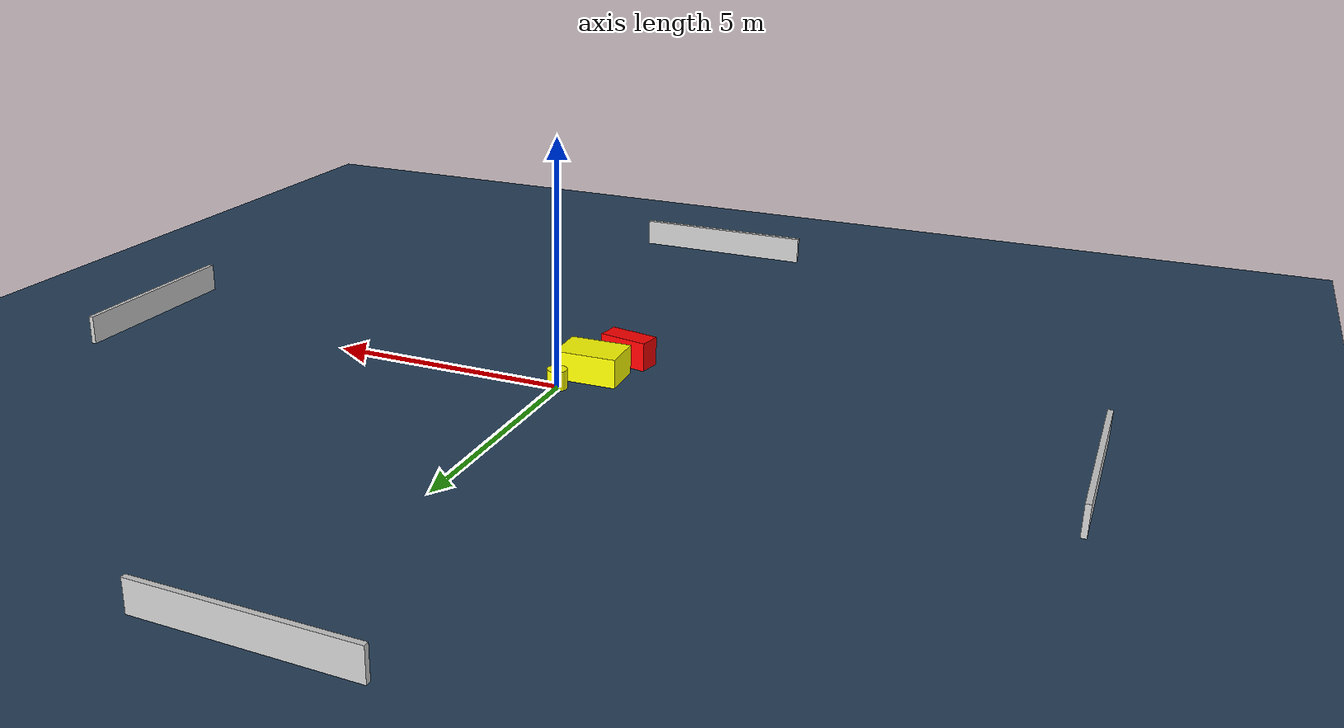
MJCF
<?xml version="1.0" ?>
<mujoco model="generated_environment">
  <option timestep="0.01" integrator="RK4" cone="elliptic"/>
  <default>
    <geom density="1"/>
  </default>
  <asset>
    <texture builtin="gradient" height="3072" name="skybox" rgb1="0.3 0.5 0.7" rgb2="0 0 0" type="skybox" width="512"/>
    <texture builtin="checker" height="300" name="groundplane" rgb1="0.2 0.3 0.4" rgb2="0.1 0.2 0.3" type="2d" width="300"/>
    <material name="groundplane" reflectance="0.2" texrepeat="5 5" texture="groundplane"/>
  </asset>
  <worldbody>
    <light dir="0 0 -1" directional="true" pos="0 0 1.5"/>
    <geom condim="3" friction="0.5 0.005 0.001" material="groundplane" name="floor" pos="0 0 0" size="0 0 0.05" type="plane"/>
    <body name="walls">
      <geom name="wall_1" condim="4" pos="-10.0 0.0 0.3" rgba="0.800000011920929 0.800000011920929 0.800000011920929 1.0" size="0.05 2.0 0.3" type="box"/>
      <geom name="wall_2" condim="4" pos="10.0 0.0 0.3" rgba="0.800000011920929 0.800000011920929 0.800000011920929 1.0" size="0.05 2.0 0.3" type="box"/>
      <geom name="wall_3" condim="4" pos="0.0 -10.0 0.3" rgba="0.800000011920929 0.800000011920929 0.800000011920929 1.0" size="2.0 0.05 0.3" type="box"/>
      <geom name="wall_4" condim="4" pos="0.0 10.0 0.3" rgba="0.800000011920929 0.800000011920929 0.800000011920929 1.0" size="2.0 0.05 0.3" type="box"/>
    </body>
    <body name="robot">
      <joint name="joint_x" type="slide" pos="0 0 0" axis="1 0 0"/>
      <joint name="joint_y" type="slide" pos="0 0 0" axis="0 1 0"/>
      <geom name="robot" type="cylinder" pos="0.0 0.0 0.2" size="0.2 0.2 0.0" mass="5.0" friction="1.0 0.005 0.0001" condim="4" rgba="1.0 1.0 0.0 1.0"/>
    </body>
    <body name="obstacle_1_movable">
      <geom name="obstacle_1_movable" condim="4" pos="-0.3914787122812462 -0.854976943694525 0.3" euler="0 0 91.74341126895672" friction="0.0 0.005 0.001" rgba="1.0 1.0 0.0 1.0" size="0.4517485494125144 0.6365389326700084 0.3" type="box" mass="0.1"/>
      <joint type="free"/>
    </body>
    <body name="obstacle_2_static">
      <geom name="obstacle_2_static" condim="4" pos="-0.760513227504294 -1.8309163918213402 0.3" euler="0 0 79.20082240460584" friction="0.0 0.005 0.001" rgba="1.0 0.0 0.0 1.0" size="0.23809465531530621 0.5138492312688672 0.3" type="box"/>
    </body>
  </worldbody>
  <actuator>
    <motor name="actuator_x" joint="joint_x" gear="1" ctrlrange="-1 1"/>
    <motor name="actuator_y" joint="joint_y" gear="1" ctrlrange="-1 1"/>
  </actuator>
</mujoco>
